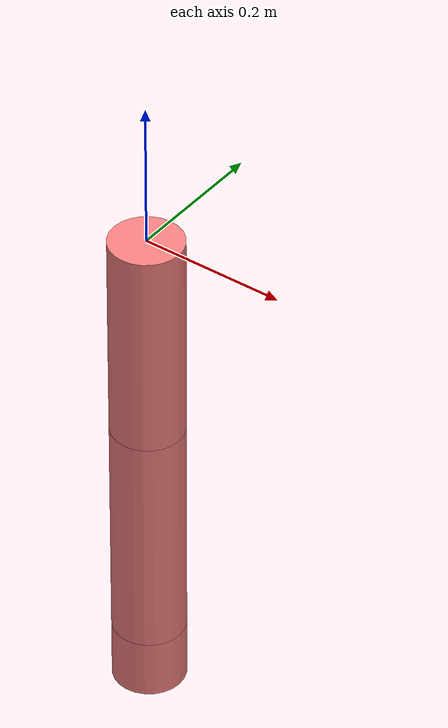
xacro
<?xml version="1.0"?>
<robot xmlns:xacro="http://www.ros.org/wiki/xacro"
       name="ur10" >

  <!-- common stuff -->

  <!-- arm -->
  <xacro:include filename="human_arm.urdf.xacro" />

  <!-- arm -->
  <xacro:human_arm prefix=""/>

  <link name="world" />

  <joint name="world_joint" type="fixed">
    <parent link="world" />
    <child link = "base_link" />
    <origin xyz="0.0 0.0 0.0" rpy="0.0 0.0 0.0" />
  </joint>

</robot>

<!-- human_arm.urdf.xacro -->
<robot xmlns:xacro="http://www.ros.org/wiki/xacro">

  <!-- Kinematics Model -->
  <property name="pi" value="3.14159265" />
  <property name="link_radius" value="0.05" />

  <property name="arm_length" value="0.298" />
  <property name="forearm_length" value="0.331" />
  <property name="hand_length" value="0.086" />

  <property name="arm_mass" value="2.5" />
  <property name="forearm_mass" value="1.45" />
  <property name="hand_mass" value="0.530" />

  <property name="shoulder_q1_lower_lim" value="${0*pi/180.0}" />
  <property name="shoulder_q1_upper_lim" value="${145*pi/180.0}" />

  <property name="shoulder_q2_lower_lim" value="${-70*pi/180.0}" />
  <property name="shoulder_q2_upper_lim" value="${90*pi/180.0}" />

  <property name="shoulder_q3_lower_lim" value="${-20*pi/180.0}" />
  <property name="shoulder_q3_upper_lim" value="${20*pi/180.0}" />

  <property name="elbow_q4_lower_lim" value="${-145*pi/180.0}" />
  <property name="elbow_q4_upper_lim" value="${0*pi/180.0}" />

  <property name="elbow_q5_lower_lim" value="${-10*pi/180.0}" />
  <property name="elbow_q5_upper_lim" value="${180*pi/180.0}" />

  <property name="wrist_q6_lower_lim" value="${-5*pi/180.0}" />
  <property name="wrist_q6_upper_lim" value="${20*pi/180.0}" />

  <property name="wrist_q7_lower_lim" value="${-45*pi/180.0}" />
  <property name="wrist_q7_upper_lim" value="${45*pi/180.0}" />

  <!-- Cylinder -->
  <xacro:macro name="cylinder_inertial" params="radius length mass *origin">
    <inertial>
      <mass value="${mass}" />
      <insert_block name="origin" />
      <inertia ixx="${0.08333*mass*(3*radius*radius + length*length)}" ixy="0.0" ixz="0.0" iyy="${0.08333*mass*(3*radius*radius+length*length)}" iyz="0.0" izz="${0.5*mass*radius*radius}" />
    </inertial>
  </xacro:macro>

  <!-- ROBOT PER SE -->

  <xacro:macro name="human_arm" params="prefix">

  <link name="${prefix}base_link" />

  <!-- ARM -->
  <link name="${prefix}arm_link">
    <visual>
      <geometry>
        <cylinder length="${arm_length}" radius="${link_radius}" />
      </geometry>
      <origin xyz="0 0 ${-arm_length/2}" rpy="0 0 0" />
      <material name="LightPink">
        <color rgba="0.96 0.5 0.5 1.0" />
      </material>
    </visual>
    <collision>
      <geometry>
        <cylinder length="${arm_length}" radius="${link_radius}"/>
      </geometry>
      <origin xyz="0 0 ${-arm_length/2}" rpy="0 0 0" />
    </collision>
    <xacro:cylinder_inertial radius="${link_radius}" length="${arm_length}" mass="${arm_mass}">
      <origin xyz="0.0 0.0 0.0" rpy="0 0 0" />
    </xacro:cylinder_inertial>
  </link>

  <link name="${prefix}shoulder_link_virtual_1" />
  <link name="${prefix}shoulder_link_virtual_2" />

  <joint name="${prefix}shoulder_q1_joint" type="revolute">
    <parent link="${prefix}base_link"/>
    <child link="${prefix}shoulder_link_virtual_1"/>
    <origin xyz="0 0 0" rpy="0.0 0.0 0.0" />
    <axis xyz="1 0 0" />
    <limit lower="${shoulder_q1_lower_lim}" upper="${shoulder_q1_upper_lim}" effort="330" velocity="2.16" />
    <dynamics damping="0.0" friction="0.0"/>
  </joint>

  <joint name="${prefix}shoulder_q2_joint" type="revolute">
    <parent link="${prefix}shoulder_link_virtual_1"/>
    <child link="${prefix}shoulder_link_virtual_2"/>
    <origin xyz="0 0 0" rpy="0.0 0.0 0.0" />
    <axis xyz="0 1 0" />
    <limit lower="${shoulder_q2_lower_lim}" upper="${shoulder_q2_upper_lim}" effort="330" velocity="2.16" />
    <dynamics damping="0.0" friction="0.0"/>
  </joint>

  <joint name="${prefix}shoulder_q3_joint" type="revolute">
    <parent link="${prefix}shoulder_link_virtual_2"/>
    <child link="${prefix}arm_link"/>
    <origin xyz="0 0 0" rpy="0.0 0.0 0.0" />
    <axis xyz="0 0 1" />
    <limit lower="${shoulder_q3_lower_lim}" upper="${shoulder_q3_upper_lim}" effort="330" velocity="2.16" />
    <dynamics damping="0.0" friction="0.0"/>
  </joint>

  <!-- FOREARM -->
  <link name="${prefix}forearm_link">
    <visual>
      <geometry>
        <cylinder length="${forearm_length}" radius="${link_radius}" />
      </geometry>
      <origin xyz="0 0 ${-forearm_length/2}" rpy="0 0 0" />
      <material name="LightPink">
        <color rgba="0.96 0.5 0.5 1.0" />
      </material>
    </visual>
    <collision>
      <geometry>
        <cylinder length="${forearm_length}" radius="${link_radius}" />
      </geometry>
      <origin xyz="0 0 ${-forearm_length/2}" rpy="0 0 0" />
    </collision>
    <xacro:cylinder_inertial radius="${link_radius}" length="${forearm_length}" mass="${forearm_mass}">
      <origin xyz="0.0 0.0 0.0" rpy="0 0 0" />
    </xacro:cylinder_inertial>
  </link>

  <link name="${prefix}forearm_link_virtual_1" />

  <joint name="${prefix}elbow_q4_joint" type="revolute">
    <parent link="${prefix}arm_link"/>
    <child link="${prefix}forearm_link_virtual_1"/>
    <origin xyz="0 0 ${-arm_length}" rpy="0.0 0.0 0.0" />
    <axis xyz="0 1 0" />
    <limit lower="${elbow_q4_lower_lim}" upper="${elbow_q4_upper_lim}" effort="330" velocity="2.16" />
    <dynamics damping="0.0" friction="0.0"/>
  </joint>

  <joint name="${prefix}elbow_q5_joint" type="revolute">
    <parent link="${prefix}forearm_link_virtual_1"/>
    <child link="${prefix}forearm_link"/>
    <origin xyz="0 0 0" rpy="0.0 0.0 0.0" />
    <axis xyz="0 0 1" />
    <limit lower="${elbow_q5_lower_lim}" upper="${elbow_q5_upper_lim}" effort="330" velocity="2.16" />
    <dynamics damping="0.0" friction="0.0"/>
  </joint>

  <!-- HAND -->
  <link name="${prefix}hand_link">
    <visual>
      <geometry>
        <cylinder length="${hand_length}" radius="${link_radius}" />
      </geometry>
      <origin xyz="0 0 ${-hand_length/2}" rpy="0 0 0" />
      <material name="LightPink">
        <color rgba="0.96 0.5 0.5 1.0" />
      </material>
    </visual>
    <collision>
      <geometry>
        <cylinder length="${hand_length}" radius="${link_radius}" />
      </geometry>
      <origin xyz="0 0 ${-hand_length/2}" rpy="0 0 0" />
    </collision>
    <xacro:cylinder_inertial radius="${link_radius}" length="${hand_length}" mass="${hand_mass}">
      <origin xyz="0.0 0.0 0.0" rpy="0 0 0" />
    </xacro:cylinder_inertial>
  </link>

  <link name="${prefix}hand_link_virtual_1" />

  <joint name="${prefix}wrist_q6_joint" type="revolute">
    <parent link="${prefix}forearm_link"/>
    <child link="${prefix}hand_link_virtual_1"/>
    <origin xyz="0 0 ${-forearm_length}" rpy="0.0 0.0 0.0" />
    <axis xyz="1 0 0" />
    <limit lower="${wrist_q6_lower_lim}" upper="${wrist_q6_upper_lim}" effort="330" velocity="2.16" />
    <dynamics damping="0.0" friction="0.0"/>
  </joint>

  <joint name="${prefix}wrist_q7_joint" type="revolute">
    <parent link="${prefix}hand_link_virtual_1"/>
    <child link="${prefix}hand_link"/>
    <origin xyz="0 0 0" rpy="0.0 0.0 0.0" />
    <axis xyz="0 1 0" />
    <limit lower="${wrist_q7_lower_lim}" upper="${wrist_q7_upper_lim}" effort="330" velocity="2.16" />
    <dynamics damping="0.0" friction="0.0"/>
  </joint>

  </xacro:macro>

</robot>
